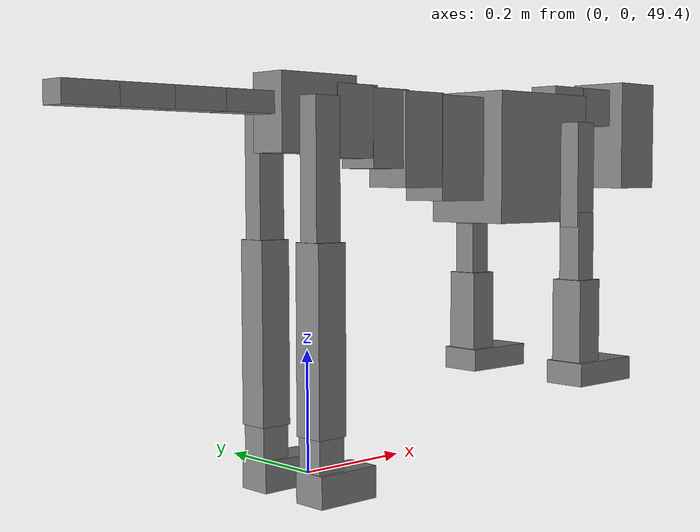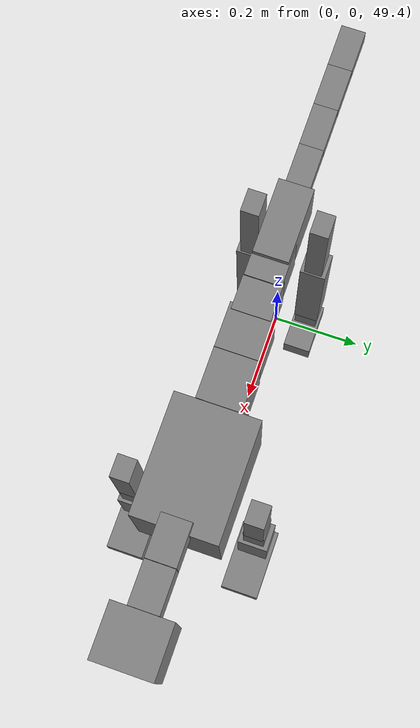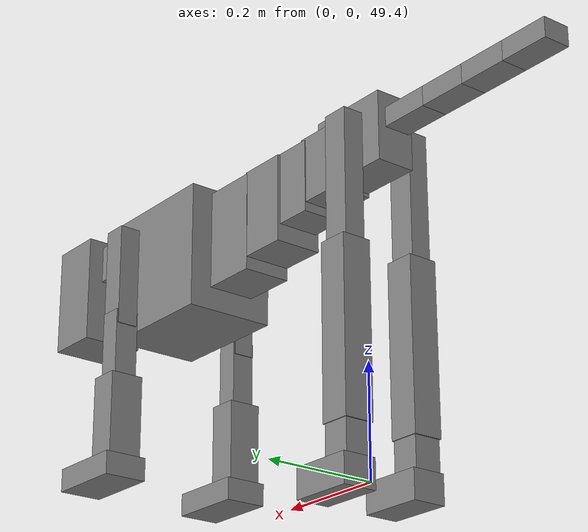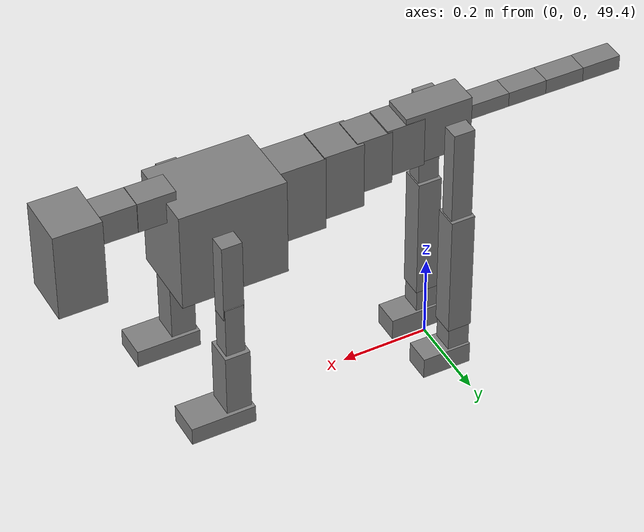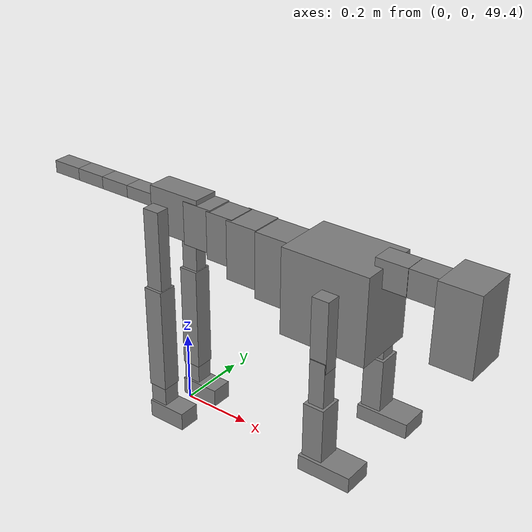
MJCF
<mujoco model="dog">

    <default>
        <joint armature="0.02" stiffness="1" damping="0.2" limited="true"/>
        <geom condim="3" friction="1 0.05 0.05" margin="0.01"/>
        <motor ctrllimited="true" ctrlrange="-1.0 1.0" forcelimited="true" gear="50"/>
    </default>

    <compiler inertiafromgeom="true" angle="radian"/>

    <option timestep="0.016" iterations="50" tolerance="1e-10" solver="Newton" jacobian="dense" cone="pyramidal"/>

    <size nconmax="20000" njmax="60000" nstack="5000000"/>
    <visual>
        <map force="0.1" zfar="30"/>
        <rgba haze="0.15 0.25 0.35 1"/>
        <quality shadowsize="2048"/>
        <global offwidth="800" offheight="800"/>
    </visual>

    <asset>
        <texture type="skybox" builtin="gradient" rgb1="0.3 0.5 0.7" rgb2="0 0 0" width="512" height="512"/>
        <texture name="texplane" type="2d" builtin="checker" rgb1=".2 .3 .4" rgb2=".1 0.15 0.2" width="512" height="512"
                 mark="cross" markrgb=".8 .8 .8"/>
        <texture name="texgeom" type="cube" builtin="flat" mark="cross" width="127" height="1278" rgb1="0.8 0.6 0.4"
                 rgb2="0.8 0.6 0.4" markrgb="1 1 1" random="0.01"/>

        <material name="matplane" reflectance="0.3" texture="texplane" texrepeat="1 1" texuniform="true"/>
        <material name="matgeom" texture="texgeom" texuniform="true" rgba="0.8 0.6 .4 1"/>
    </asset>

    <worldbody>
        <geom name="floor" pos="0 0 0" size="0 0 .25" type="plane" material="matplane" condim="3"/>

        <light directional="false" diffuse=".2 .2 .2" specular="0 0 0" pos="0 0 5" dir="0 0 -1" castshadow="false"/>
        <light mode="targetbodycom" target="torso" directional="false" diffuse=".8 .8 .8" specular="0.3 0.3 0.3"
               pos="0 0 4.0" dir="0 0 -1"/>

        <body name="root" pos="0 0 50">
            <freejoint name="root_1"/>
            <geom type="box" pos="0 0 -0.02" size="0.0774  0.0358  0.063" density="2030"/>

            <body name="spine1" pos="0.054 0 0">
                <joint name="spine1_y" axis="0 1 0" range="0 0.7" limited="true"/>
                <geom type="box" pos="0.02375 0 -0.03" size="0.04375  0.0375  0.05985" density="2030"/>

                <body name="spine2" pos="0.0612 0 0">
                    <joint name="spine2_y" axis="0 1 0" range="-0.15 0.15" limited="true"/>
                    <geom type="box" pos="0.03555  0  -0.04" size="0.04055  0.039  0.06615" density="2030"/>

                    <body name="spine3" pos="0.0730 0 0">
                        <joint name="spine3_y" axis="0 1 0" range="-0.15 0.15" limited="true"/>
                        <geom type="box" pos="0.03555  0  -0.057" size="0.04555  0.0445  0.081" density="2030"/>

                        <body name="spine4" pos="0.0780 0 0">
                            <joint name="spine4_y" axis="0 1 0" range="-0.15 0.15" limited="true"/>
                            <geom type="box" pos="0.05265  0  -0.07" size="0.05265  0.045  0.09135" density="2030"/>

                            <body name="torso" pos="0.1082 0 0">
                                <joint name="torso_y" axis="0 1 0" range="-0.15 0.15" limited="true"/>
                                <geom type="box" pos="0.11925  0  -0.085" size="0.11925  0.085  0.11745"
                                      density="2030"/>

                                <body name="neck1" pos="0.2160  0   0.0180">
                                    <joint name="neck1_y" axis="0 1 0" range="-1.2  -1" limited="true"/>
                                    <geom type="box" pos="0.0423  0  0" size="0.0423  0.03  0.036" density="2325"/>

                                    <body name="neck2" pos="0.0853  0  0">
                                        <joint name="neck2_y" axis="0 1 0" range="0.1  0" limited="true"/>
                                        <geom type="box" pos="0.0423  0  0" size="0.0423  0.03  0.036" density="2325"/>

                                        <body name="head" pos="0.0853  0  0">
                                            <joint name="head_y" axis="0 1 0" range="-0.3  -0.2" limited="true"/>
                                            <geom type="box" pos="0.0531  0  -0.055" size="0.0531  0.06  0.1044"
                                                  density="4030"/>

                                        </body>
                                    </body>
                                </body>

                                <body name="front_shoulder" pos="0.156  0   -0.0480">
                                    <joint name="front_shoulder_y" axis="0 1 0" range="-1 1.5" limited="true"/>
                                    <geom type="box" pos="0 0.13 -0.0679" size="0.0229  0.0196  0.0946" density="1158"/>
                                    <geom type="box" pos="0 -0.13 -0.0679" size="0.0229  0.0196  0.0946"
                                          density="1158"/>

                                    <body name="front_elbow" pos="0  0  -0.1358">
                                        <joint name="front_elbow_y" axis="0 1 0" range="-2 0" limited="true"/>
                                        <geom type="box" pos="0 0.13 -0.0678" size="0.0213  0.0218  0.0678"
                                              density="1081"/>
                                        <geom type="box" pos="0 -0.13 -0.0678" size="0.0213  0.0218  0.0678"
                                              density="1081"/>

                                        <body name="front_wrist" pos="0  0  -0.1356">
                                            <joint name="front_wrist_y" axis="0 1 0" range="-0.2 0" limited="true"/>
                                            <geom type="box" pos="0 0.13 -0.0758" size="0.0282  0.0313  0.0889"
                                                  density="1664"/>
                                            <geom type="box" pos="0 -0.13 -0.0758" size="0.0282  0.0313  0.0889"
                                                  density="1664"/>

                                            <body name="front_finger_end" pos="0  0  -0.1515">
                                                <joint name="front_finger_y" axis="0 1 0" range="-0.4 1"
                                                       limited="true"/>
                                                <geom type="box" pos="0.0398  0.13  -0.0060"
                                                      size="0.0729  0.0398  0.0210" density="1515"/>
                                                <geom type="box" pos="0.0398  -0.13  -0.0060"
                                                      size="0.0729  0.0398  0.0210" density="1515"/>

                                            </body>

                                        </body>
                                    </body>
                                </body>

                            </body>
                        </body>
                    </body>
                </body>
            </body>

            <body name="back_hip" pos="-0.03 0 -0.018">
                <joint name="back_hip_y" axis="0 1 0" range="-1.5 0.3" limited="true"/>
                <geom type="box" pos="0 0.07 -0.1096" size="0.0243  0.0190  0.1324" density="1154"/>
                <geom type="box" pos="0 -0.07 -0.1096" size="0.0243  0.0190  0.1324" density="1154"/>

                <body name="back_knee" pos="0  0  -0.2192">
                    <joint name="back_knee_y" axis="0 1 0" range="0 2.8" limited="true"/>
                    <geom type="box" pos="0 0.07 -0.1367" size="0.0275  0.0272  0.1522" density="1227"/>
                    <geom type="box" pos="0 -0.07 -0.1367" size="0.0275  0.0272  0.1522" density="1227"/>

                    <body name="back_ankle" pos="0  0  -0.2733">
                        <joint name="back_ankle_y" axis="0 1 0" range="-2.2 0" limited="true"/>
                        <geom type="box" pos="0 0.07 -0.0427" size="0.0250  0.0250  0.0539" density="1284"/>
                        <geom type="box" pos="0 -0.07 -0.0427" size="0.0250  0.0250  0.0539" density="1284"/>

                        <body name="back_toe_end" pos="0  0  -0.0854">
                            <joint name="back_toe_y" axis="0 1 0" range="-0.4 1" limited="true"/>
                            <geom type="box" pos="0.0310  0.07  -0.0111" size="0.0569  0.0310  0.0261" density="1515"/>
                            <geom type="box" pos="0.0310  -0.07  -0.0111" size="0.0569  0.0310  0.0261" density="1515"/>

                        </body>
                    </body>
                </body>
            </body>

            <body name="tail1" pos="-0.074 0 -0.006">
                <joint name="tail1_y" axis="0 1 0" range="-0.2 0.2" limited="true"/>
                <geom type="box" pos="-0.0536  0  0" size="0.045  0.025  0.0175" density="1587"/>

                <body name="tail2" pos="-0.09 0 0">
                    <joint name="tail2_y" axis="0 1 0" range="-0.2 0.2" limited="true"/>
                    <geom type="box" pos="-0.0536  0  0" size="0.045  0.025  0.0175" density="1587"/>

                    <body name="tail3" pos="-0.09 0 0">
                        <joint name="tail3_y" axis="0 1 0" range="-0.2 0.2" limited="true"/>
                        <geom type="box" pos="-0.0536  0  0" size="0.045  0.025  0.0175" density="1587"/>

                        <body name="tail4" pos="-0.09 0 0">
                            <joint name="tail4_y" axis="0 1 0" range="-0.2 0.2" limited="true"/>
                            <geom type="box" pos="-0.0536  0  0" size="0.045  0.025  0.0175" density="1587"/>

                        </body>
                    </body>
                </body>
            </body>
        </body>
    </worldbody>

    <actuator>
        <motor joint="spine1_y" forcerange="-150 150     "/>
        <motor joint="spine2_y" forcerange="-150 150     "/>
        <motor joint="spine3_y" forcerange="-150 150     "/>
        <motor joint="spine4_y" forcerange="-150 150     "/>
        <motor joint="torso_y" forcerange="-150 150     "/>
        <motor joint="neck1_y" forcerange="-100 100       "/>
        <motor joint="neck2_y" forcerange="-100 100       "/>
        <motor joint="head_y" forcerange="-150 150       "/>
        <motor joint="front_shoulder_y" forcerange="-115.28 115.32"/>
        <motor joint="front_elbow_y" forcerange="-106.14 152.37"/>
        <motor joint="front_wrist_y" forcerange="-103.90 146.67"/>
        <motor joint="front_finger_y" forcerange="-83.46 88.56"/>
        <motor joint="back_hip_y" forcerange="-252.85 200.89"/>
        <motor joint="back_knee_y" forcerange="-310.00 284.95"/>
        <motor joint="back_angle_y" forcerange="-148.77 150.93"/>
        <motor joint="back_toe_y" forcerange="-108.05 60.19"/>
        <motor joint="tail1_y" forcerange="-50 50     "/>
        <motor joint="tail2_y" forcerange="-50 50     "/>
        <motor joint="tail3_y" forcerange="-50 50     "/>
        <motor joint="tail4_y" forcerange="-50 50     "/>
    </actuator>
</mujoco>
